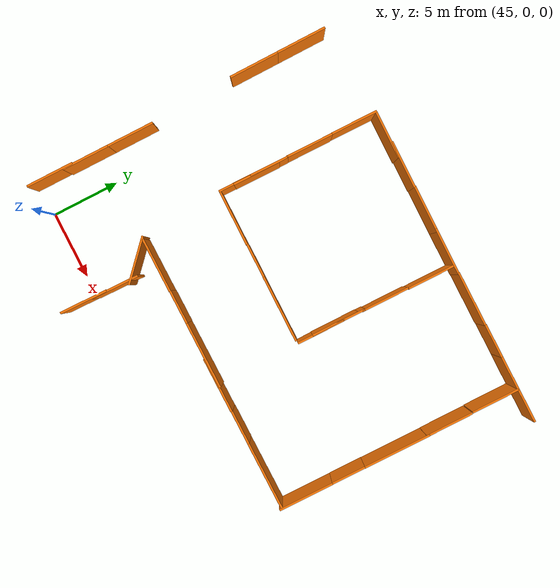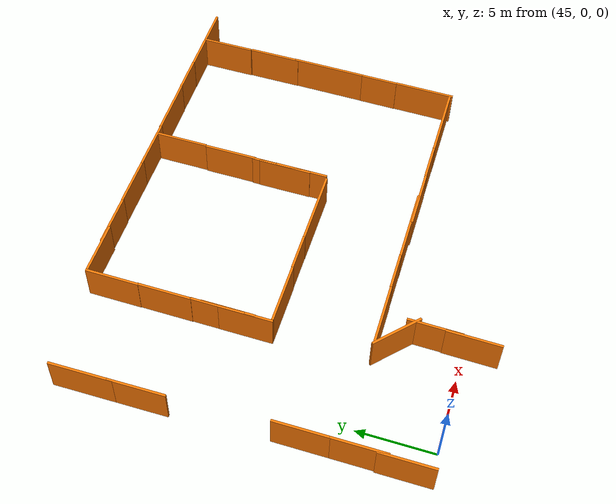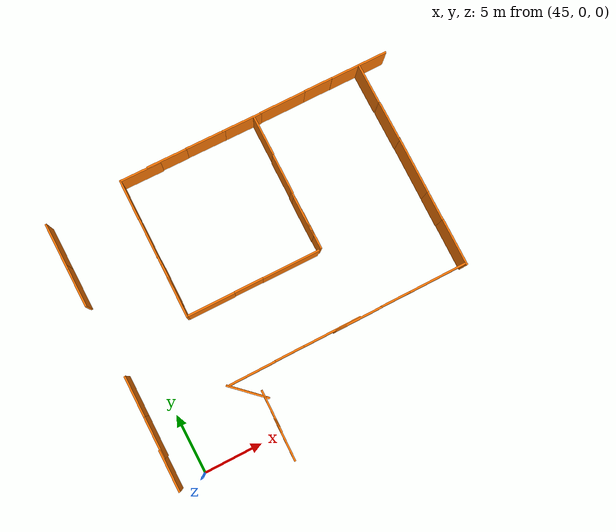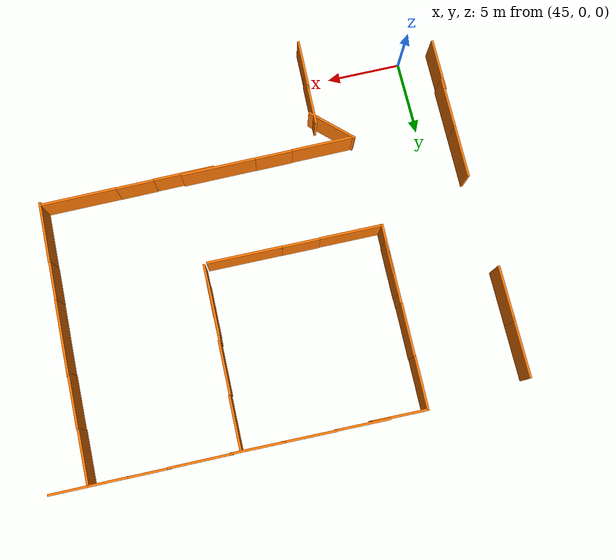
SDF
<sdf version="1.7">
 <world name="cimen_zemin_dunyasi">
  <model name="barrier2_1_clone">
   <pose>51.0319 1.12684 0 0 -0 1.54878</pose>
   <link name="Wall_3">
    <collision name="Wall_3_Collision">
     <geometry><box><size>3.5 0.15 2.5</size></box></geometry>
     <pose>0 0 1.25 0 -0 0</pose>
    </collision>
    <visual name="Wall_3_Visual">
     <pose>0 0 1.25 0 -0 0</pose>
     <geometry><box><size>3.5 0.15 2.5</size></box></geometry>
     <material>
      <script><uri>file://media/materials/scripts/gazebo.material</uri><name>Gazebo/Grey</name></script>
      <ambient>0.996078 0.47451 0.0196078 1</ambient>
     </material>
     <meta><layer>0</layer></meta>
    </visual>
    <pose>-1.55327 -0.720218 0 0 -0 0</pose>
   </link>
   <static>1</static>
  </model>
  <model name="barrier2_1_clone_clone">
   <pose>51.1197 3.5141 0 0 -0 1.54878</pose>
   <link name="Wall_3">
    <collision name="Wall_3_Collision">
     <geometry><box><size>3.5 0.15 2.5</size></box></geometry>
     <pose>0 0 1.25 0 -0 0</pose>
    </collision>
    <visual name="Wall_3_Visual">
     <pose>0 0 1.25 0 -0 0</pose>
     <geometry><box><size>3.5 0.15 2.5</size></box></geometry>
     <material>
      <script><uri>file://media/materials/scripts/gazebo.material</uri><name>Gazebo/Grey</name></script>
      <ambient>0.996078 0.47451 0.0196078 1</ambient>
     </material>
     <meta><layer>0</layer></meta>
    </visual>
    <pose>-1.55327 -0.720218 0 0 -0 0</pose>
   </link>
   <static>1</static>
  </model>
  <model name="barrier2_1_clone_clone_clone">
   <pose>49.2254 4.59121 0 0 -0 2.38948</pose>
   <link name="Wall_3">
    <collision name="Wall_3_Collision">
     <geometry><box><size>3.5 0.15 2.5</size></box></geometry>
     <pose>0 0 1.25 0 -0 0</pose>
    </collision>
    <visual name="Wall_3_Visual">
     <pose>0 0 1.25 0 -0 0</pose>
     <geometry><box><size>3.5 0.15 2.5</size></box></geometry>
     <material>
      <script><uri>file://media/materials/scripts/gazebo.material</uri><name>Gazebo/Grey</name></script>
      <ambient>0.996078 0.47451 0.0196078 1</ambient>
     </material>
     <meta><layer>0</layer></meta>
    </visual>
    <pose>-1.55327 -0.720218 0 0 -0 0</pose>
   </link>
   <static>1</static>
  </model>
  <model name="barrier2_0_clone_clone_0_clone_clone_clone_clone_clone_0_clone_0">
   <pose>42.2613 9.24396 0 0 -0 1.56919</pose>
   <link name="Wall_3">
    <collision name="Wall_3_Collision">
     <geometry><box><size>3.5 0.15 2.5</size></box></geometry>
     <pose>0 0 1.25 0 -0 0</pose>
    </collision>
    <visual name="Wall_3_Visual">
     <pose>0 0 1.25 0 -0 0</pose>
     <geometry><box><size>3.5 0.15 2.5</size></box></geometry>
     <material>
      <script><uri>file://media/materials/scripts/gazebo.material</uri><name>Gazebo/Grey</name></script>
      <ambient>0.996078 0.47451 0.0196078 1</ambient>
     </material>
     <meta><layer>0</layer></meta>
    </visual>
    <pose>-1.55327 -0.720218 0 0 -0 0</pose>
   </link>
   <static>1</static>
  </model>
  <model name="barrier2_0_clone_clone_0_clone_clone_clone_clone_clone_0_clone_0_clone">
   <pose>42.256 5.80018 0 0 -0 1.56919</pose>
   <link name="Wall_3">
    <collision name="Wall_3_Collision">
     <geometry><box><size>3.5 0.15 2.5</size></box></geometry>
     <pose>0 0 1.25 0 -0 0</pose>
    </collision>
    <visual name="Wall_3_Visual">
     <pose>0 0 1.25 0 -0 0</pose>
     <geometry><box><size>3.5 0.15 2.5</size></box></geometry>
     <material>
      <script><uri>file://media/materials/scripts/gazebo.material</uri><name>Gazebo/Grey</name></script>
      <ambient>0.996078 0.47451 0.0196078 1</ambient>
     </material>
     <meta><layer>0</layer></meta>
    </visual>
    <pose>-1.55327 -0.720218 0 0 -0 0</pose>
   </link>
   <static>1</static>
  </model>
  <model name="barrier2_0_clone_clone_0_clone_clone_clone_clone_clone_0_clone_0_clone_clone">
   <pose>42.1832 3.05875 0 0 -0 1.56919</pose>
   <link name="Wall_3">
    <collision name="Wall_3_Collision">
     <geometry><box><size>3.5 0.15 2.5</size></box></geometry>
     <pose>0 0 1.25 0 -0 0</pose>
    </collision>
    <visual name="Wall_3_Visual">
     <pose>0 0 1.25 0 -0 0</pose>
     <geometry><box><size>3.5 0.15 2.5</size></box></geometry>
     <material>
      <script><uri>file://media/materials/scripts/gazebo.material</uri><name>Gazebo/Grey</name></script>
      <ambient>0.996078 0.47451 0.0196078 1</ambient>
     </material>
     <meta><layer>0</layer></meta>
    </visual>
    <pose>-1.55327 -0.720218 0 0 -0 0</pose>
   </link>
   <static>1</static>
  </model>
  <model name="barier3_clone_clone_clone_clone_0_clone_clone_0_clone_clone_clone_clone_0_clone">
   <link name="Wall_5">
    <pose>-1.14926 -2.31114 0 0 -0 0</pose>
    <inertial>
     <inertia><ixx>0</ixx><ixy>0</ixy><ixz>0</ixz><iyy>0</iyy><iyz>0</iyz><izz>0</izz></inertia>
     <mass>0</mass>
    </inertial>
    <visual name="Wall_5_Visual">
     <pose>0 0 1.25 0 -0 0</pose>
     <geometry><box><size>4.04839 0.15 2.5</size></box></geometry>
     <material>
      <script><uri>file://media/materials/scripts/gazebo.material</uri><name>Gazebo/Grey</name></script>
      <ambient>0.996078 0.47451 0.0196078 1</ambient>
      <shader type="pixel"/>
     </material>
     <meta><layer>0</layer></meta>
    </visual>
    <collision name="Wall_5_Collision">
     <pose>0 0 1.25 0 -0 0</pose>
     <geometry><box><size>4.04839 0.15 2.5</size></box></geometry>
     <surface>
      <friction>
       <ode><mu>1</mu><mu2>1</mu2><fdir1>0 0 0</fdir1><slip1>0</slip1><slip2>0</slip2></ode>
       <torsional>
        <coefficient>1</coefficient>
        <patch_radius>0</patch_radius>
        <surface_radius>0</surface_radius>
        <use_patch_radius>1</use_patch_radius>
        <ode><slip>0</slip></ode>
       </torsional>
      </friction>
      <bounce><restitution_coefficient>0</restitution_coefficient><threshold>1e+06</threshold></bounce>
      <contact>
       <collide_without_contact>0</collide_without_contact>
       <collide_without_contact_bitmask>1</collide_without_contact_bitmask>
       <collide_bitmask>1</collide_bitmask>
       <ode>
        <soft_cfm>0</soft_cfm>
        <soft_erp>0.2</soft_erp>
        <kp>1e+13</kp>
        <kd>1</kd>
        <max_vel>0.01</max_vel>
        <min_depth>0</min_depth>
       </ode>
       <bullet>
        <split_impulse>1</split_impulse>
        <split_impulse_penetration_threshold>-0.01</split_impulse_penetration_threshold>
        <soft_cfm>0</soft_cfm>
        <soft_erp>0.2</soft_erp>
        <kp>1e+13</kp>
        <kd>1</kd>
       </bullet>
      </contact>
     </surface>
    </collision>
   </link>
   <link name="Wall_9">
    <pose>2.34493 -2.31065 0 0 -0 0</pose>
    <inertial>
     <inertia><ixx>0</ixx><ixy>0</ixy><ixz>0</ixz><iyy>0</iyy><iyz>0</iyz><izz>0</izz></inertia>
     <mass>0</mass>
    </inertial>
    <visual name="Wall_9_Visual">
     <pose>0 0 1.25 0 -0 0</pose>
     <geometry><box><size>3.66586 0.15 2.5</size></box></geometry>
     <material>
      <script><uri>file://media/materials/scripts/gazebo.material</uri><name>Gazebo/Grey</name></script>
      <ambient>0.996078 0.47451 0.0196078 1</ambient>
      <shader type="pixel"/>
     </material>
     <meta><layer>0</layer></meta>
    </visual>
    <collision name="Wall_9_Collision">
     <pose>0 0 1.25 0 -0 0</pose>
     <geometry><box><size>3.66586 0.15 2.5</size></box></geometry>
     <surface>
      <friction>
       <ode><mu>1</mu><mu2>1</mu2><fdir1>0 0 0</fdir1><slip1>0</slip1><slip2>0</slip2></ode>
       <torsional>
        <coefficient>1</coefficient>
        <patch_radius>0</patch_radius>
        <surface_radius>0</surface_radius>
        <use_patch_radius>1</use_patch_radius>
        <ode><slip>0</slip></ode>
       </torsional>
      </friction>
      <bounce><restitution_coefficient>0</restitution_coefficient><threshold>1e+06</threshold></bounce>
      <contact>
       <collide_without_contact>0</collide_without_contact>
       <collide_without_contact_bitmask>1</collide_without_contact_bitmask>
       <collide_bitmask>1</collide_bitmask>
       <ode>
        <soft_cfm>0</soft_cfm>
        <soft_erp>0.2</soft_erp>
        <kp>1e+13</kp>
        <kd>1</kd>
        <max_vel>0.01</max_vel>
        <min_depth>0</min_depth>
       </ode>
       <bullet>
        <split_impulse>1</split_impulse>
        <split_impulse_penetration_threshold>-0.01</split_impulse_penetration_threshold>
        <soft_cfm>0</soft_cfm>
        <soft_erp>0.2</soft_erp>
        <kp>1e+13</kp>
        <kd>1</kd>
       </bullet>
      </contact>
     </surface>
    </collision>
   </link>
   <static>1</static>
   <pose>44.9498 19.8013 0 0 0 -1.56598</pose>
  </model>
  <model name="barier3_clone_clone_clone_clone_0_clone_clone_clone_clone_1_clone_clone_clone_clone_0">
   <link name="Wall_5">
    <pose>-1.25417 -2.31114 0 0 -0 0</pose>
    <inertial>
     <inertia><ixx>0</ixx><ixy>0</ixy><ixz>0</ixz><iyy>0</iyy><iyz>0</iyz><izz>0</izz></inertia>
     <mass>0</mass>
    </inertial>
    <visual name="Wall_5_Visual">
     <pose>0 0 1.25 0 -0 0</pose>
     <geometry><box><size>4.04839 0.15 2.5</size></box></geometry>
     <material>
      <script><uri>file://media/materials/scripts/gazebo.material</uri><name>Gazebo/Grey</name></script>
      <ambient>0.996078 0.47451 0.0196078 1</ambient>
      <shader type="pixel"/>
     </material>
     <meta><layer>0</layer></meta>
    </visual>
    <collision name="Wall_5_Collision">
     <pose>0 0 1.25 0 -0 0</pose>
     <geometry><box><size>4.04839 0.15 2.5</size></box></geometry>
     <surface>
      <friction>
       <ode><mu>1</mu><mu2>1</mu2><fdir1>0 0 0</fdir1><slip1>0</slip1><slip2>0</slip2></ode>
       <torsional>
        <coefficient>1</coefficient>
        <patch_radius>0</patch_radius>
        <surface_radius>0</surface_radius>
        <use_patch_radius>1</use_patch_radius>
        <ode><slip>0</slip></ode>
       </torsional>
      </friction>
      <bounce><restitution_coefficient>0</restitution_coefficient><threshold>1e+06</threshold></bounce>
      <contact>
       <collide_without_contact>0</collide_without_contact>
       <collide_without_contact_bitmask>1</collide_without_contact_bitmask>
       <collide_bitmask>1</collide_bitmask>
       <ode>
        <soft_cfm>0</soft_cfm>
        <soft_erp>0.2</soft_erp>
        <kp>1e+13</kp>
        <kd>1</kd>
        <max_vel>0.01</max_vel>
        <min_depth>0</min_depth>
       </ode>
       <bullet>
        <split_impulse>1</split_impulse>
        <split_impulse_penetration_threshold>-0.01</split_impulse_penetration_threshold>
        <soft_cfm>0</soft_cfm>
        <soft_erp>0.2</soft_erp>
        <kp>1e+13</kp>
        <kd>1</kd>
       </bullet>
      </contact>
     </surface>
    </collision>
   </link>
   <link name="Wall_7">
    <pose>2 -2.29057 0 0 -0 0</pose>
    <visual name="Wall_7_Visual">
     <pose>0 0 1.25 0 -0 0</pose>
     <geometry><box><size>2.5 0.15 2.5</size></box></geometry>
     <material>
      <script><uri>file://media/materials/scripts/gazebo.material</uri><name>Gazebo/Grey</name></script>
      <ambient>0.996078 0.47451 0.0196078 1</ambient>
      <shader type="pixel"/>
     </material>
     <meta><layer>0</layer></meta>
    </visual>
    <collision name="Wall_7_Collision">
     <pose>0 0 1.25 0 -0 0</pose>
     <geometry><box><size>2.5 0.15 2.5</size></box></geometry>
     <surface>
      <friction>
       <ode><mu>1</mu><mu2>1</mu2><fdir1>0 0 0</fdir1><slip1>0</slip1><slip2>0</slip2></ode>
       <torsional>
        <coefficient>1</coefficient>
        <patch_radius>0</patch_radius>
        <surface_radius>0</surface_radius>
        <use_patch_radius>1</use_patch_radius>
        <ode><slip>0</slip></ode>
       </torsional>
      </friction>
      <bounce><restitution_coefficient>0</restitution_coefficient><threshold>1e+06</threshold></bounce>
      <contact>
       <collide_without_contact>0</collide_without_contact>
       <collide_without_contact_bitmask>1</collide_without_contact_bitmask>
       <collide_bitmask>1</collide_bitmask>
       <ode>
        <soft_cfm>0</soft_cfm>
        <soft_erp>0.2</soft_erp>
        <kp>1e+13</kp>
        <kd>1</kd>
        <max_vel>0.01</max_vel>
        <min_depth>0</min_depth>
       </ode>
       <bullet>
        <split_impulse>1</split_impulse>
        <split_impulse_penetration_threshold>-0.01</split_impulse_penetration_threshold>
        <soft_cfm>0</soft_cfm>
        <soft_erp>0.2</soft_erp>
        <kp>1e+13</kp>
        <kd>1</kd>
       </bullet>
      </contact>
     </surface>
    </collision>
   </link>
   <link name="Wall_9">
    <pose>5.71906 -2.30051 0 0 -0 0</pose>
    <inertial>
     <inertia><ixx>0</ixx><ixy>0</ixy><ixz>0</ixz><iyy>0</iyy><iyz>0</iyz><izz>0</izz></inertia>
     <mass>0</mass>
    </inertial>
    <visual name="Wall_9_Visual">
     <pose>0 0 1.25 0 -0 0</pose>
     <geometry><box><size>4.97607 0.15 2.5</size></box></geometry>
     <material>
      <script><uri>file://media/materials/scripts/gazebo.material</uri><name>Gazebo/Grey</name></script>
      <ambient>0.996078 0.47451 0.0196078 1</ambient>
      <shader type="pixel"/>
     </material>
     <meta><layer>0</layer></meta>
    </visual>
    <collision name="Wall_9_Collision">
     <pose>0 0 1.25 0 -0 0</pose>
     <geometry><box><size>4.97607 0.15 2.5</size></box></geometry>
     <surface>
      <friction>
       <ode><mu>1</mu><mu2>1</mu2><fdir1>0 0 0</fdir1><slip1>0</slip1><slip2>0</slip2></ode>
       <torsional>
        <coefficient>1</coefficient>
        <patch_radius>0</patch_radius>
        <surface_radius>0</surface_radius>
        <use_patch_radius>1</use_patch_radius>
        <ode><slip>0</slip></ode>
       </torsional>
      </friction>
      <bounce><restitution_coefficient>0</restitution_coefficient><threshold>1e+06</threshold></bounce>
      <contact>
       <collide_without_contact>0</collide_without_contact>
       <collide_without_contact_bitmask>1</collide_without_contact_bitmask>
       <collide_bitmask>1</collide_bitmask>
       <ode>
        <soft_cfm>0</soft_cfm>
        <soft_erp>0.2</soft_erp>
        <kp>1e+13</kp>
        <kd>1</kd>
        <max_vel>0.01</max_vel>
        <min_depth>0</min_depth>
       </ode>
       <bullet>
        <split_impulse>1</split_impulse>
        <split_impulse_penetration_threshold>-0.01</split_impulse_penetration_threshold>
        <soft_cfm>0</soft_cfm>
        <soft_erp>0.2</soft_erp>
        <kp>1e+13</kp>
        <kd>1</kd>
       </bullet>
      </contact>
     </surface>
    </collision>
   </link>
   <static>1</static>
   <pose>65.0963 25.6096 0 0 0 -0.007995</pose>
  </model>
  <model name="barrier2_1_clone_clone_clone_clone_clone_clone_clone">
   <pose>61.7236 24.0173 0 0 0 -0.015947</pose>
   <link name="Wall_3">
    <collision name="Wall_3_Collision">
     <geometry><box><size>3.5 0.15 2.5</size></box></geometry>
     <pose>0 0 1.25 0 -0 0</pose>
    </collision>
    <visual name="Wall_3_Visual">
     <pose>0 0 1.25 0 -0 0</pose>
     <geometry><box><size>3.5 0.15 2.5</size></box></geometry>
     <material>
      <script><uri>file://media/materials/scripts/gazebo.material</uri><name>Gazebo/Grey</name></script>
      <ambient>0.996078 0.47451 0.0196078 1</ambient>
     </material>
     <meta><layer>0</layer></meta>
    </visual>
    <pose>-1.55327 -0.720218 0 0 -0 0</pose>
   </link>
   <static>1</static>
  </model>
  <model name="barrier2_1_clone_clone_clone_clone_clone_clone_clone_clone">
   <pose>58.4665 24.0631 0 0 0 -0.015947</pose>
   <link name="Wall_3">
    <collision name="Wall_3_Collision">
     <geometry><box><size>3.5 0.15 2.5</size></box></geometry>
     <pose>0 0 1.25 0 -0 0</pose>
    </collision>
    <visual name="Wall_3_Visual">
     <pose>0 0 1.25 0 -0 0</pose>
     <geometry><box><size>3.5 0.15 2.5</size></box></geometry>
     <material>
      <script><uri>file://media/materials/scripts/gazebo.material</uri><name>Gazebo/Grey</name></script>
      <ambient>0.996078 0.47451 0.0196078 1</ambient>
     </material>
     <meta><layer>0</layer></meta>
    </visual>
    <pose>-1.55327 -0.720218 0 0 -0 0</pose>
   </link>
   <static>1</static>
  </model>
  <model name="barrier2_1_clone_clone_clone_clone_clone_clone_clone_clone_clone">
   <pose>55.0363 24.0914 0 0 0 -0.015947</pose>
   <link name="Wall_3">
    <collision name="Wall_3_Collision">
     <geometry><box><size>3.5 0.15 2.5</size></box></geometry>
     <pose>0 0 1.25 0 -0 0</pose>
    </collision>
    <visual name="Wall_3_Visual">
     <pose>0 0 1.25 0 -0 0</pose>
     <geometry><box><size>3.5 0.15 2.5</size></box></geometry>
     <material>
      <script><uri>file://media/materials/scripts/gazebo.material</uri><name>Gazebo/Grey</name></script>
      <ambient>0.996078 0.47451 0.0196078 1</ambient>
     </material>
     <meta><layer>0</layer></meta>
    </visual>
    <pose>-1.55327 -0.720218 0 0 -0 0</pose>
   </link>
   <static>1</static>
  </model>
  <model name="barrier2_1_clone_clone_clone_clone_clone_clone_clone_clone_clone_clone">
   <pose>52.7158 24.068 0 0 0 -0.015947</pose>
   <link name="Wall_3">
    <collision name="Wall_3_Collision">
     <geometry><box><size>3.5 0.15 2.5</size></box></geometry>
     <pose>0 0 1.25 0 -0 0</pose>
    </collision>
    <visual name="Wall_3_Visual">
     <pose>0 0 1.25 0 -0 0</pose>
     <geometry><box><size>3.5 0.15 2.5</size></box></geometry>
     <material>
      <script><uri>file://media/materials/scripts/gazebo.material</uri><name>Gazebo/Grey</name></script>
      <ambient>0.996078 0.47451 0.0196078 1</ambient>
     </material>
     <meta><layer>0</layer></meta>
    </visual>
    <pose>-1.55327 -0.720218 0 0 -0 0</pose>
   </link>
   <static>1</static>
  </model>
  <model name="barrier2_1_clone_clone_clone_clone_clone_clone_clone_clone_clone_clone_clone">
   <pose>48.646 23.2844 0 0 -0 1.56031</pose>
   <link name="Wall_3">
    <collision name="Wall_3_Collision">
     <geometry><box><size>3.5 0.15 2.5</size></box></geometry>
     <pose>0 0 1.25 0 -0 0</pose>
    </collision>
    <visual name="Wall_3_Visual">
     <pose>0 0 1.25 0 -0 0</pose>
     <geometry><box><size>3.5 0.15 2.5</size></box></geometry>
     <material>
      <script><uri>file://media/materials/scripts/gazebo.material</uri><name>Gazebo/Grey</name></script>
      <ambient>0.996078 0.47451 0.0196078 1</ambient>
     </material>
     <meta><layer>0</layer></meta>
    </visual>
    <pose>-1.55327 -0.720218 0 0 -0 0</pose>
   </link>
   <static>1</static>
  </model>
  <model name="barrier2_1_clone_clone_clone_clone_clone_clone_clone_clone_clone_clone_clone_clone">
   <pose>48.6303 19.8377 0 0 -0 1.56031</pose>
   <link name="Wall_3">
    <collision name="Wall_3_Collision">
     <geometry><box><size>3.5 0.15 2.5</size></box></geometry>
     <pose>0 0 1.25 0 -0 0</pose>
    </collision>
    <visual name="Wall_3_Visual">
     <pose>0 0 1.25 0 -0 0</pose>
     <geometry><box><size>3.5 0.15 2.5</size></box></geometry>
     <material>
      <script><uri>file://media/materials/scripts/gazebo.material</uri><name>Gazebo/Grey</name></script>
      <ambient>0.996078 0.47451 0.0196078 1</ambient>
     </material>
     <meta><layer>0</layer></meta>
    </visual>
    <pose>-1.55327 -0.720218 0 0 -0 0</pose>
   </link>
   <static>1</static>
  </model>
  <model name="barrier2_1_clone_clone_clone_clone_clone_clone_clone_clone_clone_clone_clone_clone_clone">
   <pose>48.6151 16.4119 0 0 -0 1.56031</pose>
   <link name="Wall_3">
    <collision name="Wall_3_Collision">
     <geometry><box><size>3.5 0.15 2.5</size></box></geometry>
     <pose>0 0 1.25 0 -0 0</pose>
    </collision>
    <visual name="Wall_3_Visual">
     <pose>0 0 1.25 0 -0 0</pose>
     <geometry><box><size>3.5 0.15 2.5</size></box></geometry>
     <material>
      <script><uri>file://media/materials/scripts/gazebo.material</uri><name>Gazebo/Grey</name></script>
      <ambient>0.996078 0.47451 0.0196078 1</ambient>
     </material>
     <meta><layer>0</layer></meta>
    </visual>
    <pose>-1.55327 -0.720218 0 0 -0 0</pose>
   </link>
   <static>1</static>
  </model>
  <model name="barrier2_1_clone_clone_clone_clone_clone_clone_clone_clone_clone_clone_clone_clone_0">
   <pose>60.5119 23.099 0 0 -0 1.56031</pose>
   <link name="Wall_3">
    <collision name="Wall_3_Collision">
     <geometry><box><size>3.5 0.15 2.5</size></box></geometry>
     <pose>0 0 1.25 0 -0 0</pose>
    </collision>
    <visual name="Wall_3_Visual">
     <pose>0 0 1.25 0 -0 0</pose>
     <geometry><box><size>3.5 0.15 2.5</size></box></geometry>
     <material>
      <script><uri>file://media/materials/scripts/gazebo.material</uri><name>Gazebo/Grey</name></script>
      <ambient>0.996078 0.47451 0.0196078 1</ambient>
     </material>
     <meta><layer>0</layer></meta>
    </visual>
    <pose>-1.55327 -0.720218 0 0 -0 0</pose>
   </link>
   <static>1</static>
  </model>
  <model name="barrier2_1_clone_clone_clone_clone_clone_clone_clone_clone_clone_clone_clone_clone_0_clone">
   <pose>60.4273 19.5845 0 0 -0 1.56031</pose>
   <link name="Wall_3">
    <collision name="Wall_3_Collision">
     <geometry><box><size>3.5 0.15 2.5</size></box></geometry>
     <pose>0 0 1.25 0 -0 0</pose>
    </collision>
    <visual name="Wall_3_Visual">
     <pose>0 0 1.25 0 -0 0</pose>
     <geometry><box><size>3.5 0.15 2.5</size></box></geometry>
     <material>
      <script><uri>file://media/materials/scripts/gazebo.material</uri><name>Gazebo/Grey</name></script>
      <ambient>0.996078 0.47451 0.0196078 1</ambient>
     </material>
     <meta><layer>0</layer></meta>
    </visual>
    <pose>-1.55327 -0.720218 0 0 -0 0</pose>
   </link>
   <static>1</static>
  </model>
  <model name="barrier2_1_clone_clone_clone_clone_clone_clone_clone_clone_clone_clone_clone_clone_0_clone_clone">
   <pose>60.3492 16.2726 0 0 -0 1.56031</pose>
   <link name="Wall_3">
    <collision name="Wall_3_Collision">
     <geometry><box><size>3.5 0.15 2.5</size></box></geometry>
     <pose>0 0 1.25 0 -0 0</pose>
    </collision>
    <visual name="Wall_3_Visual">
     <pose>0 0 1.25 0 -0 0</pose>
     <geometry><box><size>3.5 0.15 2.5</size></box></geometry>
     <material>
      <script><uri>file://media/materials/scripts/gazebo.material</uri><name>Gazebo/Grey</name></script>
      <ambient>0.996078 0.47451 0.0196078 1</ambient>
     </material>
     <meta><layer>0</layer></meta>
    </visual>
    <pose>-1.55327 -0.720218 0 0 -0 0</pose>
   </link>
   <static>1</static>
  </model>
  <model name="barier3_clone_clone_clone_clone_0_clone_clone_clone_clone_1_clone_clone_clone_clone_0_clone_clone_0_clone">
   <link name="Wall_5">
    <pose>-1.25417 -2.31114 0 0 -0 0</pose>
    <inertial>
     <inertia><ixx>0</ixx><ixy>0</ixy><ixz>0</ixz><iyy>0</iyy><iyz>0</iyz><izz>0</izz></inertia>
     <mass>0</mass>
    </inertial>
    <visual name="Wall_5_Visual">
     <pose>0 0 1.25 0 -0 0</pose>
     <geometry><box><size>4.04839 0.15 2.5</size></box></geometry>
     <material>
      <script><uri>file://media/materials/scripts/gazebo.material</uri><name>Gazebo/Grey</name></script>
      <ambient>0.996078 0.47451 0.0196078 1</ambient>
      <shader type="pixel"/>
     </material>
     <meta><layer>0</layer></meta>
    </visual>
    <collision name="Wall_5_Collision">
     <pose>0 0 1.25 0 -0 0</pose>
     <geometry><box><size>4.04839 0.15 2.5</size></box></geometry>
     <surface>
      <friction>
       <ode><mu>1</mu><mu2>1</mu2><fdir1>0 0 0</fdir1><slip1>0</slip1><slip2>0</slip2></ode>
       <torsional>
        <coefficient>1</coefficient>
        <patch_radius>0</patch_radius>
        <surface_radius>0</surface_radius>
        <use_patch_radius>1</use_patch_radius>
        <ode><slip>0</slip></ode>
       </torsional>
      </friction>
      <bounce><restitution_coefficient>0</restitution_coefficient><threshold>1e+06</threshold></bounce>
      <contact>
       <collide_without_contact>0</collide_without_contact>
       <collide_without_contact_bitmask>1</collide_without_contact_bitmask>
       <collide_bitmask>1</collide_bitmask>
       <ode>
        <soft_cfm>0</soft_cfm>
        <soft_erp>0.2</soft_erp>
        <kp>1e+13</kp>
        <kd>1</kd>
        <max_vel>0.01</max_vel>
        <min_depth>0</min_depth>
       </ode>
       <bullet>
        <split_impulse>1</split_impulse>
        <split_impulse_penetration_threshold>-0.01</split_impulse_penetration_threshold>
        <soft_cfm>0</soft_cfm>
        <soft_erp>0.2</soft_erp>
        <kp>1e+13</kp>
        <kd>1</kd>
       </bullet>
      </contact>
     </surface>
    </collision>
   </link>
   <link name="Wall_7">
    <pose>2 -2.29057 0 0 -0 0</pose>
    <visual name="Wall_7_Visual">
     <pose>0 0 1.25 0 -0 0</pose>
     <geometry><box><size>2.5 0.15 2.5</size></box></geometry>
     <material>
      <script><uri>file://media/materials/scripts/gazebo.material</uri><name>Gazebo/Grey</name></script>
      <ambient>0.996078 0.47451 0.0196078 1</ambient>
      <shader type="pixel"/>
     </material>
     <meta><layer>0</layer></meta>
    </visual>
    <collision name="Wall_7_Collision">
     <pose>0 0 1.25 0 -0 0</pose>
     <geometry><box><size>2.5 0.15 2.5</size></box></geometry>
     <surface>
      <friction>
       <ode><mu>1</mu><mu2>1</mu2><fdir1>0 0 0</fdir1><slip1>0</slip1><slip2>0</slip2></ode>
       <torsional>
        <coefficient>1</coefficient>
        <patch_radius>0</patch_radius>
        <surface_radius>0</surface_radius>
        <use_patch_radius>1</use_patch_radius>
        <ode><slip>0</slip></ode>
       </torsional>
      </friction>
      <bounce><restitution_coefficient>0</restitution_coefficient><threshold>1e+06</threshold></bounce>
      <contact>
       <collide_without_contact>0</collide_without_contact>
       <collide_without_contact_bitmask>1</collide_without_contact_bitmask>
       <collide_bitmask>1</collide_bitmask>
       <ode>
        <soft_cfm>0</soft_cfm>
        <soft_erp>0.2</soft_erp>
        <kp>1e+13</kp>
        <kd>1</kd>
        <max_vel>0.01</max_vel>
        <min_depth>0</min_depth>
       </ode>
       <bullet>
        <split_impulse>1</split_impulse>
        <split_impulse_penetration_threshold>-0.01</split_impulse_penetration_threshold>
        <soft_cfm>0</soft_cfm>
        <soft_erp>0.2</soft_erp>
        <kp>1e+13</kp>
        <kd>1</kd>
       </bullet>
      </contact>
     </surface>
    </collision>
   </link>
   <link name="Wall_9">
    <pose>5.71906 -2.30051 0 0 -0 0</pose>
    <inertial>
     <inertia><ixx>0</ixx><ixy>0</ixy><ixz>0</ixz><iyy>0</iyy><iyz>0</iyz><izz>0</izz></inertia>
     <mass>0</mass>
    </inertial>
    <visual name="Wall_9_Visual">
     <pose>0 0 1.25 0 -0 0</pose>
     <geometry><box><size>4.97607 0.15 2.5</size></box></geometry>
     <material>
      <script><uri>file://media/materials/scripts/gazebo.material</uri><name>Gazebo/Grey</name></script>
      <ambient>0.996078 0.47451 0.0196078 1</ambient>
      <shader type="pixel"/>
     </material>
     <meta><layer>0</layer></meta>
    </visual>
    <collision name="Wall_9_Collision">
     <pose>0 0 1.25 0 -0 0</pose>
     <geometry><box><size>4.97607 0.15 2.5</size></box></geometry>
     <surface>
      <friction>
       <ode><mu>1</mu><mu2>1</mu2><fdir1>0 0 0</fdir1><slip1>0</slip1><slip2>0</slip2></ode>
       <torsional>
        <coefficient>1</coefficient>
        <patch_radius>0</patch_radius>
        <surface_radius>0</surface_radius>
        <use_patch_radius>1</use_patch_radius>
        <ode><slip>0</slip></ode>
       </torsional>
      </friction>
      <bounce><restitution_coefficient>0</restitution_coefficient><threshold>1e+06</threshold></bounce>
      <contact>
       <collide_without_contact>0</collide_without_contact>
       <collide_without_contact_bitmask>1</collide_without_contact_bitmask>
       <collide_bitmask>1</collide_bitmask>
       <ode>
        <soft_cfm>0</soft_cfm>
        <soft_erp>0.2</soft_erp>
        <kp>1e+13</kp>
        <kd>1</kd>
        <max_vel>0.01</max_vel>
        <min_depth>0</min_depth>
       </ode>
       <bullet>
        <split_impulse>1</split_impulse>
        <split_impulse_penetration_threshold>-0.01</split_impulse_penetration_threshold>
        <soft_cfm>0</soft_cfm>
        <soft_erp>0.2</soft_erp>
        <kp>1e+13</kp>
        <kd>1</kd>
       </bullet>
      </contact>
     </surface>
    </collision>
   </link>
   <static>1</static>
   <pose>68.3195 8.2642 0 0 -0 1.553</pose>
  </model>
  <model name="barier3_clone_clone_clone_clone_0_clone_clone_clone_clone_1_clone_clone_clone_clone_0_clone_clone_0_clone_clone">
   <link name="Wall_5">
    <pose>-1.25417 -2.31114 0 0 -0 0</pose>
    <inertial>
     <inertia><ixx>0</ixx><ixy>0</ixy><ixz>0</ixz><iyy>0</iyy><iyz>0</iyz><izz>0</izz></inertia>
     <mass>0</mass>
    </inertial>
    <visual name="Wall_5_Visual">
     <pose>0 0 1.25 0 -0 0</pose>
     <geometry><box><size>4.04839 0.15 2.5</size></box></geometry>
     <material>
      <script><uri>file://media/materials/scripts/gazebo.material</uri><name>Gazebo/Grey</name></script>
      <ambient>0.996078 0.47451 0.0196078 1</ambient>
      <shader type="pixel"/>
     </material>
     <meta><layer>0</layer></meta>
    </visual>
    <collision name="Wall_5_Collision">
     <pose>0 0 1.25 0 -0 0</pose>
     <geometry><box><size>4.04839 0.15 2.5</size></box></geometry>
     <surface>
      <friction>
       <ode><mu>1</mu><mu2>1</mu2><fdir1>0 0 0</fdir1><slip1>0</slip1><slip2>0</slip2></ode>
       <torsional>
        <coefficient>1</coefficient>
        <patch_radius>0</patch_radius>
        <surface_radius>0</surface_radius>
        <use_patch_radius>1</use_patch_radius>
        <ode><slip>0</slip></ode>
       </torsional>
      </friction>
      <bounce><restitution_coefficient>0</restitution_coefficient><threshold>1e+06</threshold></bounce>
      <contact>
       <collide_without_contact>0</collide_without_contact>
       <collide_without_contact_bitmask>1</collide_without_contact_bitmask>
       <collide_bitmask>1</collide_bitmask>
       <ode>
        <soft_cfm>0</soft_cfm>
        <soft_erp>0.2</soft_erp>
        <kp>1e+13</kp>
        <kd>1</kd>
        <max_vel>0.01</max_vel>
        <min_depth>0</min_depth>
       </ode>
       <bullet>
        <split_impulse>1</split_impulse>
        <split_impulse_penetration_threshold>-0.01</split_impulse_penetration_threshold>
        <soft_cfm>0</soft_cfm>
        <soft_erp>0.2</soft_erp>
        <kp>1e+13</kp>
        <kd>1</kd>
       </bullet>
      </contact>
     </surface>
    </collision>
   </link>
   <link name="Wall_7">
    <pose>2 -2.29057 0 0 -0 0</pose>
    <visual name="Wall_7_Visual">
     <pose>0 0 1.25 0 -0 0</pose>
     <geometry><box><size>2.5 0.15 2.5</size></box></geometry>
     <material>
      <script><uri>file://media/materials/scripts/gazebo.material</uri><name>Gazebo/Grey</name></script>
      <ambient>0.996078 0.47451 0.0196078 1</ambient>
      <shader type="pixel"/>
     </material>
     <meta><layer>0</layer></meta>
    </visual>
    <collision name="Wall_7_Collision">
     <pose>0 0 1.25 0 -0 0</pose>
     <geometry><box><size>2.5 0.15 2.5</size></box></geometry>
     <surface>
      <friction>
       <ode><mu>1</mu><mu2>1</mu2><fdir1>0 0 0</fdir1><slip1>0</slip1><slip2>0</slip2></ode>
       <torsional>
        <coefficient>1</coefficient>
        <patch_radius>0</patch_radius>
        <surface_radius>0</surface_radius>
        <use_patch_radius>1</use_patch_radius>
        <ode><slip>0</slip></ode>
       </torsional>
      </friction>
      <bounce><restitution_coefficient>0</restitution_coefficient><threshold>1e+06</threshold></bounce>
      <contact>
       <collide_without_contact>0</collide_without_contact>
       <collide_without_contact_bitmask>1</collide_without_contact_bitmask>
       <collide_bitmask>1</collide_bitmask>
       <ode>
        <soft_cfm>0</soft_cfm>
        <soft_erp>0.2</soft_erp>
        <kp>1e+13</kp>
        <kd>1</kd>
        <max_vel>0.01</max_vel>
        <min_depth>0</min_depth>
       </ode>
       <bullet>
        <split_impulse>1</split_impulse>
        <split_impulse_penetration_threshold>-0.01</split_impulse_penetration_threshold>
        <soft_cfm>0</soft_cfm>
        <soft_erp>0.2</soft_erp>
        <kp>1e+13</kp>
        <kd>1</kd>
       </bullet>
      </contact>
     </surface>
    </collision>
   </link>
   <link name="Wall_9">
    <pose>5.71906 -2.30051 0 0 -0 0</pose>
    <inertial>
     <inertia><ixx>0</ixx><ixy>0</ixy><ixz>0</ixz><iyy>0</iyy><iyz>0</iyz><izz>0</izz></inertia>
     <mass>0</mass>
    </inertial>
    <visual name="Wall_9_Visual">
     <pose>0 0 1.25 0 -0 0</pose>
     <geometry><box><size>4.97607 0.15 2.5</size></box></geometry>
     <material>
      <script><uri>file://media/materials/scripts/gazebo.material</uri><name>Gazebo/Grey</name></script>
      <ambient>0.996078 0.47451 0.0196078 1</ambient>
      <shader type="pixel"/>
     </material>
     <meta><layer>0</layer></meta>
    </visual>
    <collision name="Wall_9_Collision">
     <pose>0 0 1.25 0 -0 0</pose>
     <geometry><box><size>4.97607 0.15 2.5</size></box></geometry>
     <surface>
      <friction>
       <ode><mu>1</mu><mu2>1</mu2><fdir1>0 0 0</fdir1><slip1>0</slip1><slip2>0</slip2></ode>
       <torsional>
        <coefficient>1</coefficient>
        <patch_radius>0</patch_radius>
        <surface_radius>0</surface_radius>
        <use_patch_radius>1</use_patch_radius>
        <ode><slip>0</slip></ode>
       </torsional>
      </friction>
      <bounce><restitution_coefficient>0</restitution_coefficient><threshold>1e+06</threshold></bounce>
      <contact>
       <collide_without_contact>0</collide_without_contact>
       <collide_without_contact_bitmask>1</collide_without_contact_bitmask>
       <collide_bitmask>1</collide_bitmask>
       <ode>
        <soft_cfm>0</soft_cfm>
        <soft_erp>0.2</soft_erp>
        <kp>1e+13</kp>
        <kd>1</kd>
        <max_vel>0.01</max_vel>
        <min_depth>0</min_depth>
       </ode>
       <bullet>
        <split_impulse>1</split_impulse>
        <split_impulse_penetration_threshold>-0.01</split_impulse_penetration_threshold>
        <soft_cfm>0</soft_cfm>
        <soft_erp>0.2</soft_erp>
        <kp>1e+13</kp>
        <kd>1</kd>
       </bullet>
      </contact>
     </surface>
    </collision>
   </link>
   <static>1</static>
   <pose>62.3119 7.42667 0 0 -0 0.001487</pose>
  </model>
  <model name="barrier2_1_clone_clone_clone_clone_clone_clone_clone_clone_clone_clone_clone_clone_0_clone_clone_0">
   <pose>70.0543 19.5221 0 0 -0 1.56031</pose>
   <link name="Wall_3">
    <collision name="Wall_3_Collision">
     <geometry><box><size>3.5 0.15 2.5</size></box></geometry>
     <pose>0 0 1.25 0 -0 0</pose>
    </collision>
    <visual name="Wall_3_Visual">
     <pose>0 0 1.25 0 -0 0</pose>
     <geometry><box><size>3.5 0.15 2.5</size></box></geometry>
     <material>
      <script><uri>file://media/materials/scripts/gazebo.material</uri><name>Gazebo/Grey</name></script>
      <ambient>0.996078 0.47451 0.0196078 1</ambient>
     </material>
     <meta><layer>0</layer></meta>
    </visual>
    <pose>-1.55327 -0.720218 0 0 -0 0</pose>
   </link>
   <static>1</static>
  </model>
  <model name="barrier2_1_clone_clone_clone_clone_clone_clone_clone_clone_clone_clone_clone_clone_0_clone_clone_0_clone">
   <pose>70.0621 23.0657 0 0 -0 1.56031</pose>
   <link name="Wall_3">
    <collision name="Wall_3_Collision">
     <geometry><box><size>3.5 0.15 2.5</size></box></geometry>
     <pose>0 0 1.25 0 -0 0</pose>
    </collision>
    <visual name="Wall_3_Visual">
     <pose>0 0 1.25 0 -0 0</pose>
     <geometry><box><size>3.5 0.15 2.5</size></box></geometry>
     <material>
      <script><uri>file://media/materials/scripts/gazebo.material</uri><name>Gazebo/Grey</name></script>
      <ambient>0.996078 0.47451 0.0196078 1</ambient>
     </material>
     <meta><layer>0</layer></meta>
    </visual>
    <pose>-1.55327 -0.720218 0 0 -0 0</pose>
   </link>
   <static>1</static>
  </model>
  <model name="barrier2_1_clone_clone_clone_clone_clone_clone_clone_clone_clone_clone_clone_clone_clone_clone">
   <pose>60.3266 15.7652 0 0 -0 1.56031</pose>
   <link name="Wall_3">
    <collision name="Wall_3_Collision">
     <geometry><box><size>3.5 0.15 2.5</size></box></geometry>
     <pose>0 0 1.25 0 -0 0</pose>
    </collision>
    <visual name="Wall_3_Visual">
     <pose>0 0 1.25 0 -0 0</pose>
     <geometry><box><size>3.5 0.15 2.5</size></box></geometry>
     <material>
      <script><uri>file://media/materials/scripts/gazebo.material</uri><name>Gazebo/Grey</name></script>
      <ambient>0.996078 0.47451 0.0196078 1</ambient>
     </material>
     <meta><layer>0</layer></meta>
    </visual>
    <pose>-1.55327 -0.720218 0 0 -0 0</pose>
   </link>
   <static>1</static>
  </model>
  <model name="barrier2_1_clone_clone_clone_clone_clone_clone_clone_clone_clone_clone_clone_clone_clone_clone_0">
   <pose>48.6293 15.7417 0 0 -0 1.56031</pose>
   <link name="Wall_3">
    <collision name="Wall_3_Collision">
     <geometry><box><size>3.5 0.15 2.5</size></box></geometry>
     <pose>0 0 1.25 0 -0 0</pose>
    </collision>
    <visual name="Wall_3_Visual">
     <pose>0 0 1.25 0 -0 0</pose>
     <geometry><box><size>3.5 0.15 2.5</size></box></geometry>
     <material>
      <script><uri>file://media/materials/scripts/gazebo.material</uri><name>Gazebo/Grey</name></script>
      <ambient>0.996078 0.47451 0.0196078 1</ambient>
     </material>
     <meta><layer>0</layer></meta>
    </visual>
    <pose>-1.55327 -0.720218 0 0 -0 0</pose>
   </link>
   <static>1</static>
  </model>
  <model name="barier3_clone_clone_clone_clone_0_clone_clone_clone_clone_1_clone_clone_clone_clone_0_clone_clone_0_clone_clone_clone">
   <link name="Wall_5">
    <pose>-1.25417 -2.31114 0 0 -0 0</pose>
    <inertial>
     <inertia><ixx>0</ixx><ixy>0</ixy><ixz>0</ixz><iyy>0</iyy><iyz>0</iyz><izz>0</izz></inertia>
     <mass>0</mass>
    </inertial>
    <visual name="Wall_5_Visual">
     <pose>0 0 1.25 0 -0 0</pose>
     <geometry><box><size>4.04839 0.15 2.5</size></box></geometry>
     <material>
      <script><uri>file://media/materials/scripts/gazebo.material</uri><name>Gazebo/Grey</name></script>
      <ambient>0.996078 0.47451 0.0196078 1</ambient>
      <shader type="pixel"/>
     </material>
     <meta><layer>0</layer></meta>
    </visual>
    <collision name="Wall_5_Collision">
     <pose>0 0 1.25 0 -0 0</pose>
     <geometry><box><size>4.04839 0.15 2.5</size></box></geometry>
     <surface>
      <friction>
       <ode><mu>1</mu><mu2>1</mu2><fdir1>0 0 0</fdir1><slip1>0</slip1><slip2>0</slip2></ode>
       <torsional>
        <coefficient>1</coefficient>
        <patch_radius>0</patch_radius>
        <surface_radius>0</surface_radius>
        <use_patch_radius>1</use_patch_radius>
        <ode><slip>0</slip></ode>
       </torsional>
      </friction>
      <bounce><restitution_coefficient>0</restitution_coefficient><threshold>1e+06</threshold></bounce>
      <contact>
       <collide_without_contact>0</collide_without_contact>
       <collide_without_contact_bitmask>1</collide_without_contact_bitmask>
       <collide_bitmask>1</collide_bitmask>
       <ode>
        <soft_cfm>0</soft_cfm>
        <soft_erp>0.2</soft_erp>
        <kp>1e+13</kp>
        <kd>1</kd>
        <max_vel>0.01</max_vel>
        <min_depth>0</min_depth>
       </ode>
       <bullet>
        <split_impulse>1</split_impulse>
        <split_impulse_penetration_threshold>-0.01</split_impulse_penetration_threshold>
        <soft_cfm>0</soft_cfm>
        <soft_erp>0.2</soft_erp>
        <kp>1e+13</kp>
        <kd>1</kd>
       </bullet>
      </contact>
     </surface>
    </collision>
   </link>
   <link name="Wall_7">
    <pose>2 -2.29057 0 0 -0 0</pose>
    <visual name="Wall_7_Visual">
     <pose>0 0 1.25 0 -0 0</pose>
     <geometry><box><size>2.5 0.15 2.5</size></box></geometry>
     <material>
      <script><uri>file://media/materials/scripts/gazebo.material</uri><name>Gazebo/Grey</name></script>
      <ambient>0.996078 0.47451 0.0196078 1</ambient>
      <shader type="pixel"/>
     </material>
     <meta><layer>0</layer></meta>
    </visual>
    <collision name="Wall_7_Collision">
     <pose>0 0 1.25 0 -0 0</pose>
     <geometry><box><size>2.5 0.15 2.5</size></box></geometry>
     <surface>
      <friction>
       <ode><mu>1</mu><mu2>1</mu2><fdir1>0 0 0</fdir1><slip1>0</slip1><slip2>0</slip2></ode>
       <torsional>
        <coefficient>1</coefficient>
        <patch_radius>0</patch_radius>
        <surface_radius>0</surface_radius>
        <use_patch_radius>1</use_patch_radius>
        <ode><slip>0</slip></ode>
       </torsional>
      </friction>
      <bounce><restitution_coefficient>0</restitution_coefficient><threshold>1e+06</threshold></bounce>
      <contact>
       <collide_without_contact>0</collide_without_contact>
       <collide_without_contact_bitmask>1</collide_without_contact_bitmask>
       <collide_bitmask>1</collide_bitmask>
       <ode>
        <soft_cfm>0</soft_cfm>
        <soft_erp>0.2</soft_erp>
        <kp>1e+13</kp>
        <kd>1</kd>
        <max_vel>0.01</max_vel>
        <min_depth>0</min_depth>
       </ode>
       <bullet>
        <split_impulse>1</split_impulse>
        <split_impulse_penetration_threshold>-0.01</split_impulse_penetration_threshold>
        <soft_cfm>0</soft_cfm>
        <soft_erp>0.2</soft_erp>
        <kp>1e+13</kp>
        <kd>1</kd>
       </bullet>
      </contact>
     </surface>
    </collision>
   </link>
   <link name="Wall_9">
    <pose>5.71906 -2.30051 0 0 -0 0</pose>
    <inertial>
     <inertia><ixx>0</ixx><ixy>0</ixy><ixz>0</ixz><iyy>0</iyy><iyz>0</iyz><izz>0</izz></inertia>
     <mass>0</mass>
    </inertial>
    <visual name="Wall_9_Visual">
     <pose>0 0 1.25 0 -0 0</pose>
     <geometry><box><size>4.97607 0.15 2.5</size></box></geometry>
     <material>
      <script><uri>file://media/materials/scripts/gazebo.material</uri><name>Gazebo/Grey</name></script>
      <ambient>0.996078 0.47451 0.0196078 1</ambient>
      <shader type="pixel"/>
     </material>
     <meta><layer>0</layer></meta>
    </visual>
    <collision name="Wall_9_Collision">
     <pose>0 0 1.25 0 -0 0</pose>
     <geometry><box><size>4.97607 0.15 2.5</size></box></geometry>
     <surface>
      <friction>
       <ode><mu>1</mu><mu2>1</mu2><fdir1>0 0 0</fdir1><slip1>0</slip1><slip2>0</slip2></ode>
       <torsional>
        <coefficient>1</coefficient>
        <patch_radius>0</patch_radius>
        <surface_radius>0</surface_radius>
        <use_patch_radius>1</use_patch_radius>
        <ode><slip>0</slip></ode>
       </torsional>
      </friction>
      <bounce><restitution_coefficient>0</restitution_coefficient><threshold>1e+06</threshold></bounce>
      <contact>
       <collide_without_contact>0</collide_without_contact>
       <collide_without_contact_bitmask>1</collide_without_contact_bitmask>
       <collide_bitmask>1</collide_bitmask>
       <ode>
        <soft_cfm>0</soft_cfm>
        <soft_erp>0.2</soft_erp>
        <kp>1e+13</kp>
        <kd>1</kd>
        <max_vel>0.01</max_vel>
        <min_depth>0</min_depth>
       </ode>
       <bullet>
        <split_impulse>1</split_impulse>
        <split_impulse_penetration_threshold>-0.01</split_impulse_penetration_threshold>
        <soft_cfm>0</soft_cfm>
        <soft_erp>0.2</soft_erp>
        <kp>1e+13</kp>
        <kd>1</kd>
       </bullet>
      </contact>
     </surface>
    </collision>
   </link>
   <static>1</static>
   <pose>53.0449 7.4684 0 0 -0 0.001487</pose>
  </model>
  <model name="barier3_clone_clone_clone_clone_0_clone_clone_clone_clone_1_clone_clone_clone_clone_0_clone_clone">
   <link name="Wall_5">
    <pose>-1.25417 -2.31114 0 0 -0 0</pose>
    <inertial>
     <inertia><ixx>0</ixx><ixy>0</ixy><ixz>0</ixz><iyy>0</iyy><iyz>0</iyz><izz>0</izz></inertia>
     <mass>0</mass>
    </inertial>
    <visual name="Wall_5_Visual">
     <pose>0 0 1.25 0 -0 0</pose>
     <geometry><box><size>4.04839 0.15 2.5</size></box></geometry>
     <material>
      <script><uri>file://media/materials/scripts/gazebo.material</uri><name>Gazebo/Grey</name></script>
      <ambient>0.996078 0.47451 0.0196078 1</ambient>
      <shader type="pixel"/>
     </material>
     <meta><layer>0</layer></meta>
    </visual>
    <collision name="Wall_5_Collision">
     <pose>0 0 1.25 0 -0 0</pose>
     <geometry><box><size>4.04839 0.15 2.5</size></box></geometry>
     <surface>
      <friction>
       <ode><mu>1</mu><mu2>1</mu2><fdir1>0 0 0</fdir1><slip1>0</slip1><slip2>0</slip2></ode>
       <torsional>
        <coefficient>1</coefficient>
        <patch_radius>0</patch_radius>
        <surface_radius>0</surface_radius>
        <use_patch_radius>1</use_patch_radius>
        <ode><slip>0</slip></ode>
       </torsional>
      </friction>
      <bounce><restitution_coefficient>0</restitution_coefficient><threshold>1e+06</threshold></bounce>
      <contact>
       <collide_without_contact>0</collide_without_contact>
       <collide_without_contact_bitmask>1</collide_without_contact_bitmask>
       <collide_bitmask>1</collide_bitmask>
       <ode>
        <soft_cfm>0</soft_cfm>
        <soft_erp>0.2</soft_erp>
        <kp>1e+13</kp>
        <kd>1</kd>
        <max_vel>0.01</max_vel>
        <min_depth>0</min_depth>
       </ode>
       <bullet>
        <split_impulse>1</split_impulse>
        <split_impulse_penetration_threshold>-0.01</split_impulse_penetration_threshold>
        <soft_cfm>0</soft_cfm>
        <soft_erp>0.2</soft_erp>
        <kp>1e+13</kp>
        <kd>1</kd>
       </bullet>
      </contact>
     </surface>
    </collision>
   </link>
   <link name="Wall_7">
    <pose>2 -2.29057 0 0 -0 0</pose>
    <visual name="Wall_7_Visual">
     <pose>0 0 1.25 0 -0 0</pose>
     <geometry><box><size>2.5 0.15 2.5</size></box></geometry>
     <material>
      <script><uri>file://media/materials/scripts/gazebo.material</uri><name>Gazebo/Grey</name></script>
      <ambient>0.996078 0.47451 0.0196078 1</ambient>
      <shader type="pixel"/>
     </material>
     <meta><layer>0</layer></meta>
    </visual>
    <collision name="Wall_7_Collision">
     <pose>0 0 1.25 0 -0 0</pose>
     <geometry><box><size>2.5 0.15 2.5</size></box></geometry>
     <surface>
      <friction>
       <ode><mu>1</mu><mu2>1</mu2><fdir1>0 0 0</fdir1><slip1>0</slip1><slip2>0</slip2></ode>
       <torsional>
        <coefficient>1</coefficient>
        <patch_radius>0</patch_radius>
        <surface_radius>0</surface_radius>
        <use_patch_radius>1</use_patch_radius>
        <ode><slip>0</slip></ode>
       </torsional>
      </friction>
      <bounce><restitution_coefficient>0</restitution_coefficient><threshold>1e+06</threshold></bounce>
      <contact>
       <collide_without_contact>0</collide_without_contact>
       <collide_without_contact_bitmask>1</collide_without_contact_bitmask>
       <collide_bitmask>1</collide_bitmask>
       <ode>
        <soft_cfm>0</soft_cfm>
        <soft_erp>0.2</soft_erp>
        <kp>1e+13</kp>
        <kd>1</kd>
        <max_vel>0.01</max_vel>
        <min_depth>0</min_depth>
       </ode>
       <bullet>
        <split_impulse>1</split_impulse>
        <split_impulse_penetration_threshold>-0.01</split_impulse_penetration_threshold>
        <soft_cfm>0</soft_cfm>
        <soft_erp>0.2</soft_erp>
        <kp>1e+13</kp>
        <kd>1</kd>
       </bullet>
      </contact>
     </surface>
    </collision>
   </link>
   <link name="Wall_9">
    <pose>5.71906 -2.30051 0 0 -0 0</pose>
    <inertial>
     <inertia><ixx>0</ixx><ixy>0</ixy><ixz>0</ixz><iyy>0</iyy><iyz>0</iyz><izz>0</izz></inertia>
     <mass>0</mass>
    </inertial>
    <visual name="Wall_9_Visual">
     <pose>0 0 1.25 0 -0 0</pose>
     <geometry><box><size>4.97607 0.15 2.5</size></box></geometry>
     <material>
      <script><uri>file://media/materials/scripts/gazebo.material</uri><name>Gazebo/Grey</name></script>
      <ambient>0.996078 0.47451 0.0196078 1</ambient>
      <shader type="pixel"/>
     </material>
     <meta><layer>0</layer></meta>
    </visual>
    <collision name="Wall_9_Collision">
     <pose>0 0 1.25 0 -0 0</pose>
     <geometry><box><size>4.97607 0.15 2.5</size></box></geometry>
     <surface>
      <friction>
       <ode><mu>1</mu><mu2>1</mu2><fdir1>0 0 0</fdir1><slip1>0</slip1><slip2>0</slip2></ode>
       <torsional>
        <coefficient>1</coefficient>
        <patch_radius>0</patch_radius>
        <surface_radius>0</surface_radius>
        <use_patch_radius>1</use_patch_radius>
        <ode><slip>0</slip></ode>
       </torsional>
      </friction>
      <bounce><restitution_coefficient>0</restitution_coefficient><threshold>1e+06</threshold></bounce>
      <contact>
       <collide_without_contact>0</collide_without_contact>
       <collide_without_contact_bitmask>1</collide_without_contact_bitmask>
       <collide_bitmask>1</collide_bitmask>
       <ode>
        <soft_cfm>0</soft_cfm>
        <soft_erp>0.2</soft_erp>
        <kp>1e+13</kp>
        <kd>1</kd>
        <max_vel>0.01</max_vel>
        <min_depth>0</min_depth>
       </ode>
       <bullet>
        <split_impulse>1</split_impulse>
        <split_impulse_penetration_threshold>-0.01</split_impulse_penetration_threshold>
        <soft_cfm>0</soft_cfm>
        <soft_erp>0.2</soft_erp>
        <kp>1e+13</kp>
        <kd>1</kd>
       </bullet>
      </contact>
     </surface>
    </collision>
   </link>
   <static>1</static>
   <pose>52.6593 13.6454 0 0 0 -0.007995</pose>
  </model>
  <model name="barrier2_1_clone_clone_clone_clone_clone_clone_clone_clone_clone_clone_clone_clone_clone_clone_clone">
   <pose>60.3466 14.6208 0 0 -0 1.56031</pose>
   <link name="Wall_3">
    <collision name="Wall_3_Collision">
     <geometry><box><size>3.5 0.15 2.5</size></box></geometry>
     <pose>0 0 1.25 0 -0 0</pose>
    </collision>
    <visual name="Wall_3_Visual">
     <pose>0 0 1.25 0 -0 0</pose>
     <geometry><box><size>3.5 0.15 2.5</size></box></geometry>
     <material>
      <script><uri>file://media/materials/scripts/gazebo.material</uri><name>Gazebo/Grey</name></script>
      <ambient>0.996078 0.47451 0.0196078 1</ambient>
     </material>
     <meta><layer>0</layer></meta>
    </visual>
    <pose>-1.55327 -0.720218 0 0 -0 0</pose>
   </link>
   <static>1</static>
  </model>
  <model name="barrier2_1_clone_clone_clone_clone_clone_clone_clone_clone_clone_clone_clone_clone_clone_clone_0_clone">
   <pose>48.5901 14.6021 0 0 -0 1.56031</pose>
   <link name="Wall_3">
    <collision name="Wall_3_Collision">
     <geometry><box><size>3.5 0.15 2.5</size></box></geometry>
     <pose>0 0 1.25 0 -0 0</pose>
    </collision>
    <visual name="Wall_3_Visual">
     <pose>0 0 1.25 0 -0 0</pose>
     <geometry><box><size>3.5 0.15 2.5</size></box></geometry>
     <material>
      <script><uri>file://media/materials/scripts/gazebo.material</uri><name>Gazebo/Grey</name></script>
      <ambient>0.996078 0.47451 0.0196078 1</ambient>
     </material>
     <meta><layer>0</layer></meta>
    </visual>
    <pose>-1.55327 -0.720218 0 0 -0 0</pose>
   </link>
   <static>1</static>
  </model>
 </world>
</sdf>
